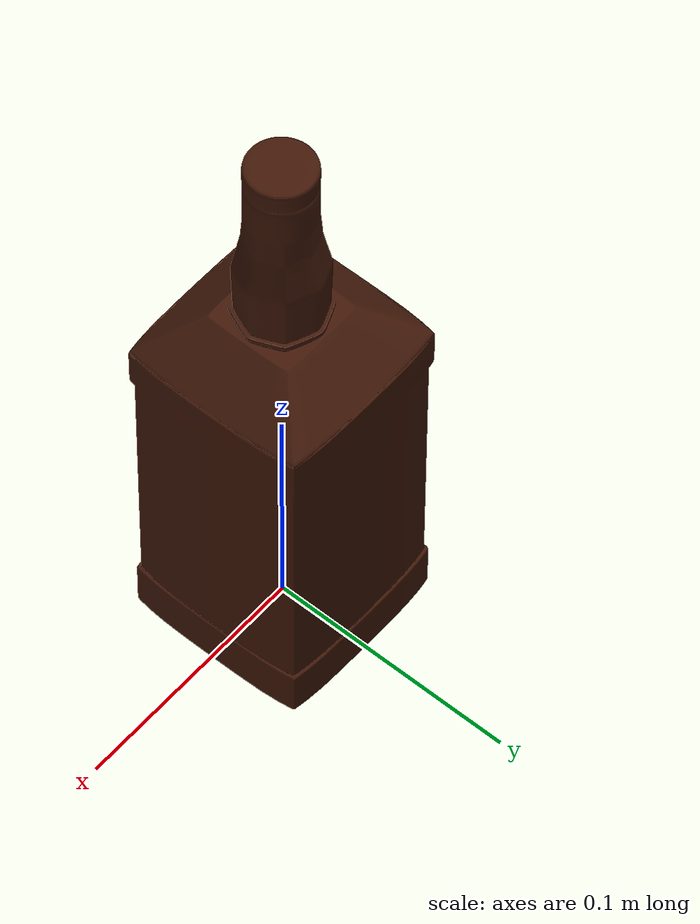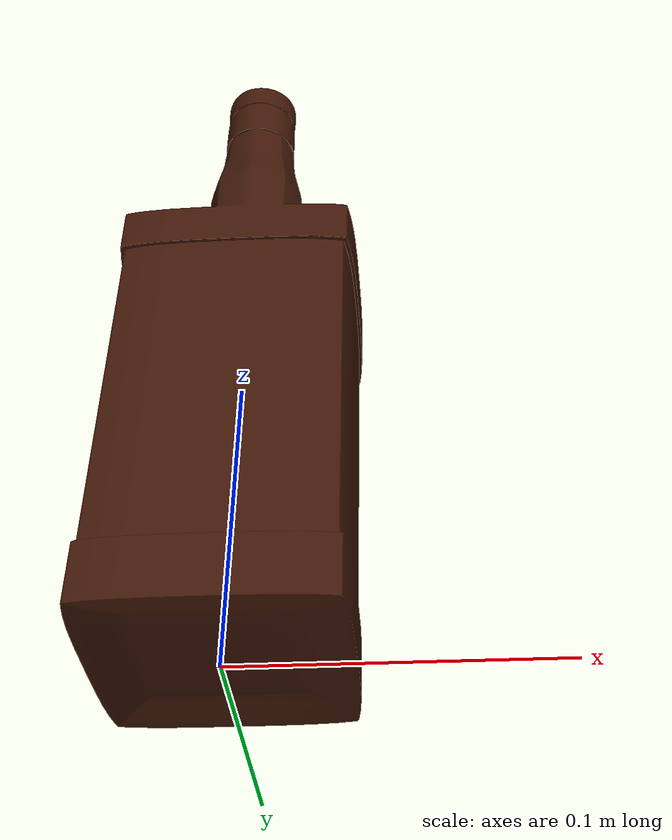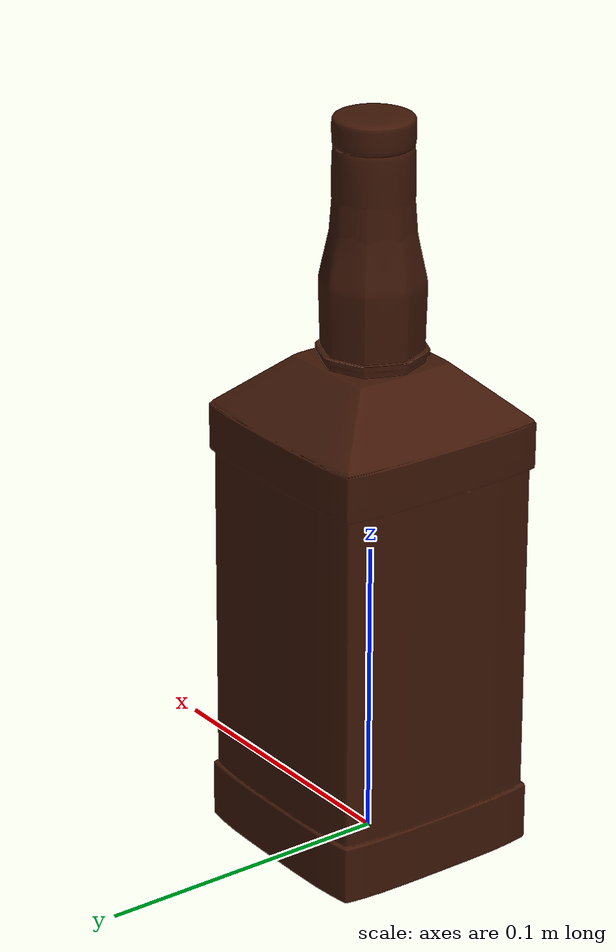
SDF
<?xml version="1.0" ?>
<sdf version="1.9">
  <model name="jack_daniels_bottle">
    <!-- Link origin sits at the center of the bottle's base, so placing the
         model's pose z at table height puts the bottle exactly on the surface. -->
    <link name="bottle_link">
      <inertial>
        <pose>0 0 0.1225 0 0 0</pose>
        <mass>1.0</mass>
        <inertia>
          <ixx>0.005375</ixx>
          <iyy>0.005375</iyy>
          <izz>0.000745</izz>
          <ixy>0</ixy>
          <ixz>0</ixz>
          <iyz>0</iyz>
        </inertia>
      </inertial>

      <visual name="bottle_visual">
        <!-- source mesh is Y-up (Blender OBJ export); rotate +90 deg about X
             so the bottle's height axis becomes Z-up as SDF expects. -->
        <pose>0 0 0 1.570796 0 0</pose>
        <geometry>
          <mesh>
            <uri>meshes/bottle.obj</uri>
          </mesh>
        </geometry>
        <material>
          <ambient>0.05 0.02 0.01 1</ambient>
          <diffuse>0.25 0.09 0.03 1</diffuse>
          <specular>0.4 0.4 0.4 1</specular>
          <emissive>0 0 0 1</emissive>
        </material>
      </visual>

      <!-- Cheap cylinder collision instead of the 34k-face visual mesh, for
           stable, fast grasp physics. -->
      <collision name="bottle_collision">
        <pose>0 0 0.1225 0 0 0</pose>
        <geometry>
          <cylinder>
            <radius>0.0386</radius>
            <length>0.245</length>
          </cylinder>
        </geometry>
        <surface>
          <friction>
            <ode>
              <mu>0.9</mu>
              <mu2>0.9</mu2>
            </ode>
          </friction>
        </surface>
      </collision>
    </link>
  </model>
</sdf>
